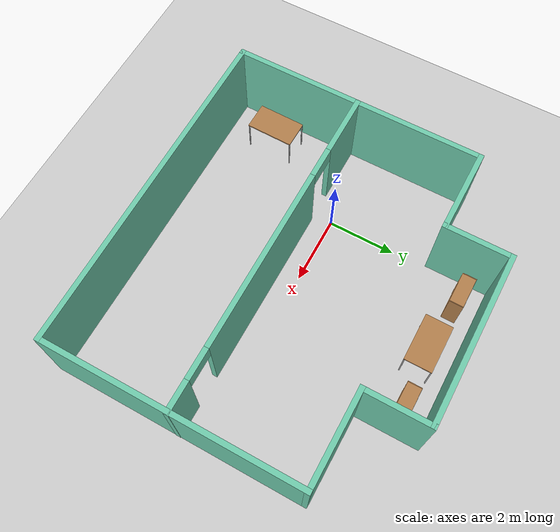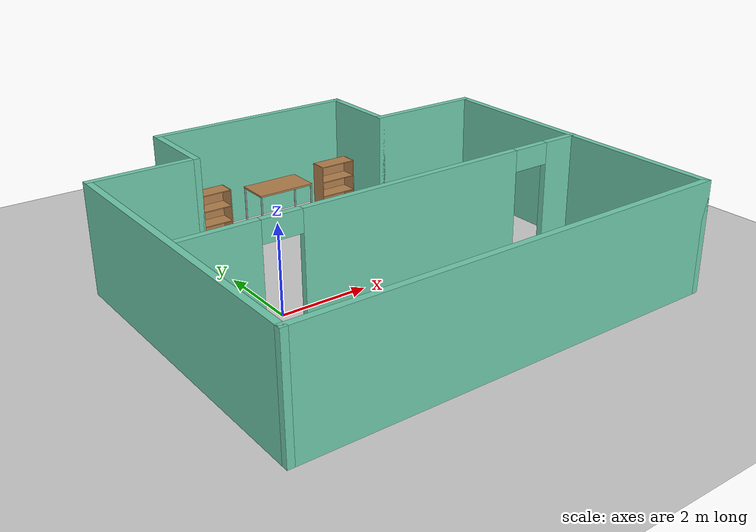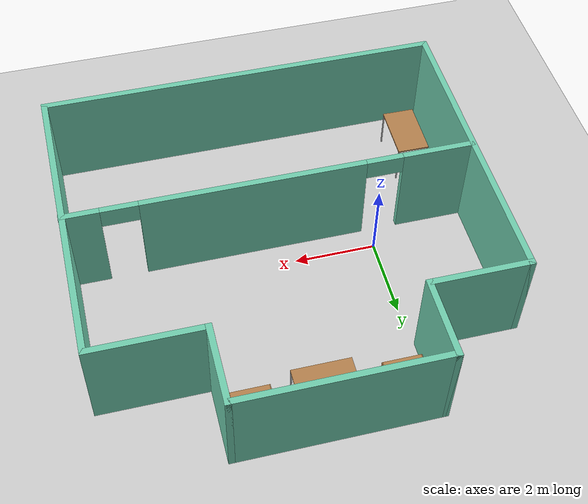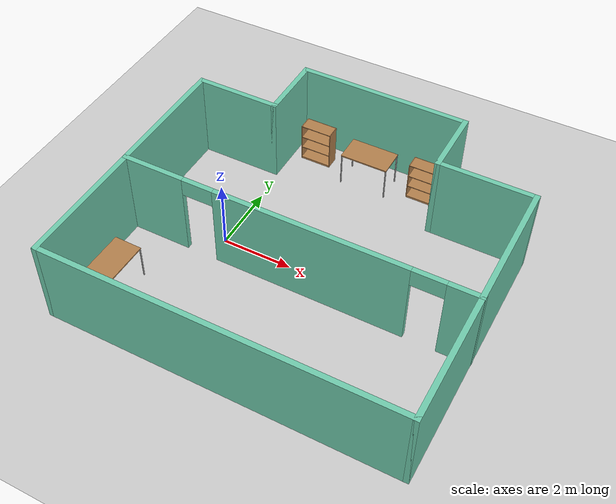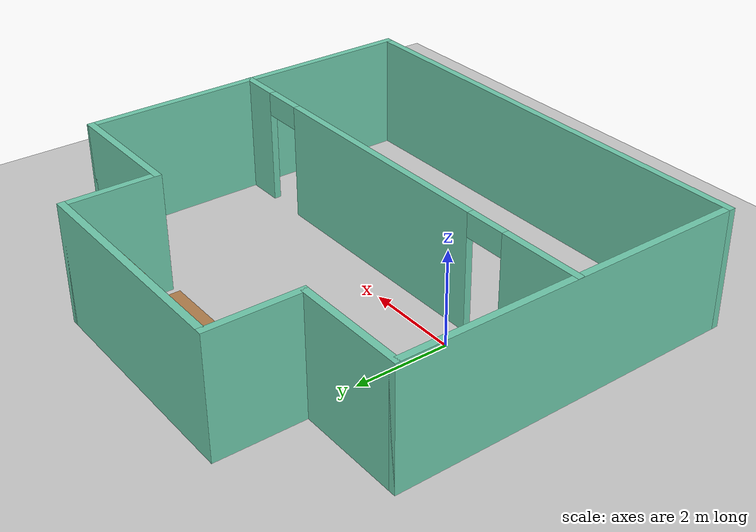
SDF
<sdf version="1.6">
 <world name="default">
  <light name="sun" type="directional">
   <pose>0 0 10 0 -0 0</pose>
   <diffuse>0.8 0.8 0.8 1</diffuse>
   <specular>0.1 0.1 0.1 1</specular>
   <attenuation>
    <range>1000</range>
    <constant>0.9</constant>
    <linear>0.01</linear>
    <quadratic>0.001</quadratic>
   </attenuation>
   <direction>-0.5 0.5 -1</direction>
  </light>
  <model name="ground_plane">
   <static>1</static>
   <link name="link">
    <collision name="collision">
     <geometry><plane><normal>0 0 1</normal><size>100 100</size></plane></geometry>
     <surface><friction><ode><mu>100</mu><mu2>50</mu2></ode></friction></surface>
    </collision>
    <visual name="visual">
     <cast_shadows>0</cast_shadows>
     <geometry><plane><normal>0 0 1</normal><size>100 100</size></plane></geometry>
     <material>
      <script><uri>file://media/materials/scripts/gazebo.material</uri><name>Gazebo/Grey</name></script>
     </material>
    </visual>
   </link>
  </model>
  <gravity>0 0 -9.8</gravity>
  <magnetic_field>6e-06 2.3e-05 -4.2e-05</magnetic_field>
  <atmosphere type="adiabatic"/>
  <physics name="default_physics" default="0" type="ode">
   <max_step_size>0.001</max_step_size>
   <real_time_factor>1</real_time_factor>
   <real_time_update_rate>1000</real_time_update_rate>
  </physics>
  <scene><ambient>0.4 0.4 0.4 1</ambient><background>0.7 0.7 0.7 1</background><shadows>1</shadows></scene>
  <spherical_coordinates>
   <surface_model>EARTH_WGS84</surface_model>
   <latitude_deg>0</latitude_deg>
   <longitude_deg>0</longitude_deg>
   <elevation>0</elevation>
   <heading_deg>0</heading_deg>
  </spherical_coordinates>
  <model name="dream_house">
   <pose>2.42956 0.31 0 0 -0 0</pose>
   <link name="Wall_0">
    <collision name="Wall_0_Collision">
     <geometry><box><size>7.5 0.15 2.5</size></box></geometry>
     <pose>0 0 1.25 0 -0 0</pose>
    </collision>
    <visual name="Wall_0_Visual">
     <pose>0 0 1.25 0 -0 0</pose>
     <geometry><box><size>7.5 0.15 2.5</size></box></geometry>
     <material>
      <script><uri>file://media/materials/scripts/gazebo.material</uri><name>Gazebo/Grey</name></script>
      <ambient>0.435294 0.796078 0.67451 1</ambient>
     </material>
    </visual>
    <pose>-4.92956 -0.925 0 0 -0 1.5708</pose>
   </link>
   <link name="Wall_11">
    <collision name="Wall_11_Collision">
     <geometry><box><size>2 0.15 2.5</size></box></geometry>
     <pose>0 0 1.25 0 -0 0</pose>
    </collision>
    <visual name="Wall_11_Visual">
     <pose>0 0 1.25 0 -0 0</pose>
     <geometry><box><size>2 0.15 2.5</size></box></geometry>
     <material>
      <script><uri>file://media/materials/scripts/gazebo.material</uri><name>Gazebo/Grey</name></script>
      <ambient>0.435294 0.796078 0.67451 1</ambient>
     </material>
    </visual>
    <pose>2.27044 3.675 0 0 0 -1.5708</pose>
   </link>
   <link name="Wall_12">
    <collision name="Wall_12_Collision">
     <geometry><box><size>2.8 0.15 2.5</size></box></geometry>
     <pose>0 0 1.25 0 -0 0</pose>
    </collision>
    <visual name="Wall_12_Visual">
     <pose>0 0 1.25 0 -0 0</pose>
     <geometry><box><size>2.8 0.15 2.5</size></box></geometry>
     <material>
      <script><uri>file://media/materials/scripts/gazebo.material</uri><name>Gazebo/Grey</name></script>
      <ambient>0.435294 0.796078 0.67451 1</ambient>
     </material>
    </visual>
    <pose>3.59544 2.75 0 0 -0 0</pose>
   </link>
   <link name="Wall_14">
    <pose>0.004562 -0.93503 0 0 -0 0</pose>
    <visual name="Wall_14_Visual_0">
     <pose>-4.0888 0 1.25 0 -0 0</pose>
     <geometry><box><size>1.82241 0.15 2.5</size></box></geometry>
     <material>
      <script><uri>file://media/materials/scripts/gazebo.material</uri><name>Gazebo/Grey</name></script>
      <ambient>0.435294 0.796078 0.67451 1</ambient>
     </material>
    </visual>
    <collision name="Wall_14_Collision_0">
     <geometry><box><size>1.82241 0.15 2.5</size></box></geometry>
     <pose>-4.0888 0 1.25 0 -0 0</pose>
    </collision>
    <visual name="Wall_14_Visual_1">
     <pose>0.441301 0 1.25 0 -0 0</pose>
     <geometry><box><size>5.43779 0.15 2.5</size></box></geometry>
     <material>
      <script><uri>file://media/materials/scripts/gazebo.material</uri><name>Gazebo/Grey</name></script>
      <ambient>0.435294 0.796078 0.67451 1</ambient>
     </material>
    </visual>
    <collision name="Wall_14_Collision_1">
     <geometry><box><size>5.43779 0.15 2.5</size></box></geometry>
     <pose>0.441301 0 1.25 0 -0 0</pose>
    </collision>
    <visual name="Wall_14_Visual_2">
     <pose>4.5301 0 1.25 0 -0 0</pose>
     <geometry><box><size>0.939806 0.15 2.5</size></box></geometry>
     <material>
      <script><uri>file://media/materials/scripts/gazebo.material</uri><name>Gazebo/Grey</name></script>
      <ambient>0.435294 0.796078 0.67451 1</ambient>
     </material>
    </visual>
    <collision name="Wall_14_Collision_2">
     <geometry><box><size>0.939806 0.15 2.5</size></box></geometry>
     <pose>4.5301 0 1.25 0 -0 0</pose>
    </collision>
    <visual name="Wall_14_Visual_3">
     <pose>-2.72759 0 2.25 0 -0 0</pose>
     <geometry><box><size>0.9 0.15 0.5</size></box></geometry>
     <material>
      <script><uri>file://media/materials/scripts/gazebo.material</uri><name>Gazebo/Grey</name></script>
      <ambient>0.435294 0.796078 0.67451 1</ambient>
     </material>
    </visual>
    <collision name="Wall_14_Collision_3">
     <geometry><box><size>0.9 0.15 0.5</size></box></geometry>
     <pose>-2.72759 0 2.25 0 -0 0</pose>
    </collision>
    <visual name="Wall_14_Visual_4">
     <pose>3.61019 0 2.25 0 -0 0</pose>
     <geometry><box><size>0.9 0.15 0.5</size></box></geometry>
     <material>
      <script><uri>file://media/materials/scripts/gazebo.material</uri><name>Gazebo/Grey</name></script>
      <ambient>0.435294 0.796078 0.67451 1</ambient>
     </material>
    </visual>
    <collision name="Wall_14_Collision_4">
     <geometry><box><size>0.9 0.15 0.5</size></box></geometry>
     <pose>3.61019 0 2.25 0 -0 0</pose>
    </collision>
   </link>
   <link name="Wall_2">
    <collision name="Wall_2_Collision">
     <geometry><box><size>10 0.15 2.5</size></box></geometry>
     <pose>0 0 1.25 0 -0 0</pose>
    </collision>
    <visual name="Wall_2_Visual">
     <pose>0 0 1.25 0 -0 0</pose>
     <geometry><box><size>10 0.15 2.5</size></box></geometry>
     <material>
      <script><uri>file://media/materials/scripts/gazebo.material</uri><name>Gazebo/Grey</name></script>
      <ambient>0.435294 0.796078 0.67451 1</ambient>
     </material>
    </visual>
    <pose>-0.004562 -4.6 0 0 -0 0</pose>
   </link>
   <link name="Wall_4">
    <collision name="Wall_4_Collision">
     <geometry><box><size>7.5 0.15 2.5</size></box></geometry>
     <pose>0 0 1.25 0 -0 0</pose>
    </collision>
    <visual name="Wall_4_Visual">
     <pose>0 0 1.25 0 -0 0</pose>
     <geometry><box><size>7.5 0.15 2.5</size></box></geometry>
     <material>
      <script><uri>file://media/materials/scripts/gazebo.material</uri><name>Gazebo/Grey</name></script>
      <ambient>0.435294 0.796078 0.67451 1</ambient>
     </material>
    </visual>
    <pose>4.92044 -0.925 0 0 -0 1.5708</pose>
   </link>
   <link name="Wall_6">
    <collision name="Wall_6_Collision">
     <geometry><box><size>2.5 0.15 2.5</size></box></geometry>
     <pose>0 0 1.25 0 -0 0</pose>
    </collision>
    <visual name="Wall_6_Visual">
     <pose>0 0 1.25 0 -0 0</pose>
     <geometry><box><size>2.5 0.15 2.5</size></box></geometry>
     <material>
      <script><uri>file://media/materials/scripts/gazebo.material</uri><name>Gazebo/Grey</name></script>
      <ambient>0.435294 0.796078 0.67451 1</ambient>
     </material>
    </visual>
    <pose>-3.75456 2.75 0 0 -0 0</pose>
   </link>
   <link name="Wall_8">
    <collision name="Wall_8_Collision">
     <geometry><box><size>2 0.15 2.5</size></box></geometry>
     <pose>0 0 1.25 0 -0 0</pose>
    </collision>
    <visual name="Wall_8_Visual">
     <pose>0 0 1.25 0 -0 0</pose>
     <geometry><box><size>2 0.15 2.5</size></box></geometry>
     <material>
      <script><uri>file://media/materials/scripts/gazebo.material</uri><name>Gazebo/Grey</name></script>
      <ambient>0.435294 0.796078 0.67451 1</ambient>
     </material>
    </visual>
    <pose>-2.57956 3.675 0 0 -0 1.5708</pose>
   </link>
   <link name="Wall_9">
    <collision name="Wall_9_Collision">
     <geometry><box><size>5 0.15 2.5</size></box></geometry>
     <pose>0 0 1.25 0 -0 0</pose>
    </collision>
    <visual name="Wall_9_Visual">
     <pose>0 0 1.25 0 -0 0</pose>
     <geometry><box><size>5 0.15 2.5</size></box></geometry>
     <material>
      <script><uri>file://media/materials/scripts/gazebo.material</uri><name>Gazebo/Grey</name></script>
      <ambient>0.435294 0.796078 0.67451 1</ambient>
     </material>
    </visual>
    <pose>-0.154562 4.6 0 0 -0 0</pose>
   </link>
   <static>1</static>
  </model>
  <model name="bookshelf">
   <static>1</static>
   <link name="link">
    <inertial><mass>1</mass></inertial>
    <collision name="back">
     <pose>0 0.005 0.6 0 -0 0</pose>
     <geometry><box><size>0.9 0.01 1.2</size></box></geometry>
    </collision>
    <visual name="visual1">
     <pose>0 0.005 0.6 0 -0 0</pose>
     <geometry><box><size>0.9 0.01 1.2</size></box></geometry>
     <material>
      <script><uri>file://media/materials/scripts/gazebo.material</uri><name>Gazebo/Wood</name></script>
     </material>
    </visual>
    <collision name="left_side">
     <pose>0.45 -0.195 0.6 0 -0 0</pose>
     <geometry><box><size>0.02 0.4 1.2</size></box></geometry>
    </collision>
    <visual name="visual2">
     <pose>0.45 -0.195 0.6 0 -0 0</pose>
     <geometry><box><size>0.02 0.4 1.2</size></box></geometry>
     <material>
      <script><uri>file://media/materials/scripts/gazebo.material</uri><name>Gazebo/Wood</name></script>
     </material>
    </visual>
    <collision name="right_side">
     <pose>-0.45 -0.195 0.6 0 -0 0</pose>
     <geometry><box><size>0.02 0.4 1.2</size></box></geometry>
    </collision>
    <visual name="visual3">
     <pose>-0.45 -0.195 0.6 0 -0 0</pose>
     <geometry><box><size>0.02 0.4 1.2</size></box></geometry>
     <material>
      <script><uri>file://media/materials/scripts/gazebo.material</uri><name>Gazebo/Wood</name></script>
     </material>
    </visual>
    <collision name="bottom">
     <pose>0 -0.195 0.03 0 -0 0</pose>
     <geometry><box><size>0.88 0.4 0.06</size></box></geometry>
    </collision>
    <visual name="visual4">
     <pose>0 -0.195 0.03 0 -0 0</pose>
     <geometry><box><size>0.88 0.4 0.06</size></box></geometry>
     <material>
      <script><uri>file://media/materials/scripts/gazebo.material</uri><name>Gazebo/Wood</name></script>
     </material>
    </visual>
    <collision name="top">
     <pose>0 -0.195 1.19 0 -0 0</pose>
     <geometry><box><size>0.88 0.4 0.02</size></box></geometry>
    </collision>
    <visual name="visual5">
     <pose>0 -0.195 1.19 0 -0 0</pose>
     <geometry><box><size>0.88 0.4 0.02</size></box></geometry>
     <material>
      <script><uri>file://media/materials/scripts/gazebo.material</uri><name>Gazebo/Wood</name></script>
     </material>
    </visual>
    <collision name="low_shelf">
     <pose>0 -0.195 0.43 0 -0 0</pose>
     <geometry><box><size>0.88 0.4 0.02</size></box></geometry>
    </collision>
    <visual name="visual6">
     <pose>0 -0.195 0.43 0 -0 0</pose>
     <geometry><box><size>0.88 0.4 0.02</size></box></geometry>
     <material>
      <script><uri>file://media/materials/scripts/gazebo.material</uri><name>Gazebo/Wood</name></script>
     </material>
    </visual>
    <collision name="high_shelf">
     <pose>0 -0.195 0.8 0 -0 0</pose>
     <geometry><box><size>0.88 0.4 0.02</size></box></geometry>
    </collision>
    <visual name="visual7">
     <pose>0 -0.195 0.8 0 -0 0</pose>
     <geometry><box><size>0.88 0.4 0.02</size></box></geometry>
     <material>
      <script><uri>file://media/materials/scripts/gazebo.material</uri><name>Gazebo/Wood</name></script>
     </material>
    </visual>
   </link>
   <pose>0.660151 4.39796 0 0 -0 0</pose>
  </model>
  <model name="bookshelf_0">
   <static>1</static>
   <link name="link">
    <inertial><mass>1</mass></inertial>
    <collision name="back">
     <pose>0 0.005 0.6 0 -0 0</pose>
     <geometry><box><size>0.9 0.01 1.2</size></box></geometry>
    </collision>
    <visual name="visual1">
     <pose>0 0.005 0.6 0 -0 0</pose>
     <geometry><box><size>0.9 0.01 1.2</size></box></geometry>
     <material>
      <script><uri>file://media/materials/scripts/gazebo.material</uri><name>Gazebo/Wood</name></script>
     </material>
    </visual>
    <collision name="left_side">
     <pose>0.45 -0.195 0.6 0 -0 0</pose>
     <geometry><box><size>0.02 0.4 1.2</size></box></geometry>
    </collision>
    <visual name="visual2">
     <pose>0.45 -0.195 0.6 0 -0 0</pose>
     <geometry><box><size>0.02 0.4 1.2</size></box></geometry>
     <material>
      <script><uri>file://media/materials/scripts/gazebo.material</uri><name>Gazebo/Wood</name></script>
     </material>
    </visual>
    <collision name="right_side">
     <pose>-0.45 -0.195 0.6 0 -0 0</pose>
     <geometry><box><size>0.02 0.4 1.2</size></box></geometry>
    </collision>
    <visual name="visual3">
     <pose>-0.45 -0.195 0.6 0 -0 0</pose>
     <geometry><box><size>0.02 0.4 1.2</size></box></geometry>
     <material>
      <script><uri>file://media/materials/scripts/gazebo.material</uri><name>Gazebo/Wood</name></script>
     </material>
    </visual>
    <collision name="bottom">
     <pose>0 -0.195 0.03 0 -0 0</pose>
     <geometry><box><size>0.88 0.4 0.06</size></box></geometry>
    </collision>
    <visual name="visual4">
     <pose>0 -0.195 0.03 0 -0 0</pose>
     <geometry><box><size>0.88 0.4 0.06</size></box></geometry>
     <material>
      <script><uri>file://media/materials/scripts/gazebo.material</uri><name>Gazebo/Wood</name></script>
     </material>
    </visual>
    <collision name="top">
     <pose>0 -0.195 1.19 0 -0 0</pose>
     <geometry><box><size>0.88 0.4 0.02</size></box></geometry>
    </collision>
    <visual name="visual5">
     <pose>0 -0.195 1.19 0 -0 0</pose>
     <geometry><box><size>0.88 0.4 0.02</size></box></geometry>
     <material>
      <script><uri>file://media/materials/scripts/gazebo.material</uri><name>Gazebo/Wood</name></script>
     </material>
    </visual>
    <collision name="low_shelf">
     <pose>0 -0.195 0.43 0 -0 0</pose>
     <geometry><box><size>0.88 0.4 0.02</size></box></geometry>
    </collision>
    <visual name="visual6">
     <pose>0 -0.195 0.43 0 -0 0</pose>
     <geometry><box><size>0.88 0.4 0.02</size></box></geometry>
     <material>
      <script><uri>file://media/materials/scripts/gazebo.material</uri><name>Gazebo/Wood</name></script>
     </material>
    </visual>
    <collision name="high_shelf">
     <pose>0 -0.195 0.8 0 -0 0</pose>
     <geometry><box><size>0.88 0.4 0.02</size></box></geometry>
    </collision>
    <visual name="visual7">
     <pose>0 -0.195 0.8 0 -0 0</pose>
     <geometry><box><size>0.88 0.4 0.02</size></box></geometry>
     <material>
      <script><uri>file://media/materials/scripts/gazebo.material</uri><name>Gazebo/Wood</name></script>
     </material>
    </visual>
   </link>
   <pose>4.06158 4.35459 0 0 -0 0</pose>
  </model>
  <model name="table">
   <static>0</static>
   <link name="link">
    <collision name="surface">
     <pose>0 0 1 0 -0 0</pose>
     <geometry><box><size>1.5 0.8 0.03</size></box></geometry>
     <surface><friction><ode><mu>0.6</mu><mu2>0.6</mu2></ode></friction></surface>
    </collision>
    <visual name="visual1">
     <pose>0 0 1 0 -0 0</pose>
     <geometry><box><size>1.4 0.8 0.04</size></box></geometry>
     <material>
      <script><uri>file://media/materials/scripts/gazebo.material</uri><name>Gazebo/Wood</name></script>
     </material>
    </visual>
    <collision name="front_left_leg">
     <pose>0.68 0.38 0.5 0 -0 0</pose>
     <geometry><cylinder><radius>0.02</radius><length>1</length></cylinder></geometry>
    </collision>
    <visual name="front_left_leg">
     <pose>0.68 0.38 0.5 0 -0 0</pose>
     <geometry><cylinder><radius>0.02</radius><length>1</length></cylinder></geometry>
     <material>
      <script><uri>file://media/materials/scripts/gazebo.material</uri><name>Gazebo/Grey</name></script>
     </material>
    </visual>
    <collision name="front_right_leg">
     <pose>0.68 -0.38 0.5 0 -0 0</pose>
     <geometry><cylinder><radius>0.02</radius><length>1</length></cylinder></geometry>
    </collision>
    <visual name="front_right_leg">
     <pose>0.68 -0.38 0.5 0 -0 0</pose>
     <geometry><cylinder><radius>0.02</radius><length>1</length></cylinder></geometry>
     <material>
      <script><uri>file://media/materials/scripts/gazebo.material</uri><name>Gazebo/Grey</name></script>
     </material>
    </visual>
    <collision name="back_right_leg">
     <pose>-0.68 -0.38 0.5 0 -0 0</pose>
     <geometry><cylinder><radius>0.02</radius><length>1</length></cylinder></geometry>
    </collision>
    <visual name="back_right_leg">
     <pose>-0.68 -0.38 0.5 0 -0 0</pose>
     <geometry><cylinder><radius>0.02</radius><length>1</length></cylinder></geometry>
     <material>
      <script><uri>file://media/materials/scripts/gazebo.material</uri><name>Gazebo/Grey</name></script>
     </material>
    </visual>
    <collision name="back_left_leg">
     <pose>-0.68 0.38 0.5 0 -0 0</pose>
     <geometry><cylinder><radius>0.02</radius><length>1</length></cylinder></geometry>
    </collision>
    <visual name="back_left_leg">
     <pose>-0.68 0.38 0.5 0 -0 0</pose>
     <geometry><cylinder><radius>0.02</radius><length>1</length></cylinder></geometry>
     <material>
      <script><uri>file://media/materials/scripts/gazebo.material</uri><name>Gazebo/Grey</name></script>
     </material>
    </visual>
    <inertial>
     <inertia><ixx>1</ixx><ixy>0</ixy><ixz>0</ixz><iyy>1</iyy><iyz>0</iyz><izz>1</izz></inertia>
     <mass>1</mass>
    </inertial>
   </link>
   <pose>2.37418 4.0134 -9e-06 1e-06 -1e-06 0</pose>
  </model>
  <model name="table_0">
   <static>0</static>
   <link name="link">
    <collision name="surface">
     <pose>0 0 1 0 -0 0</pose>
     <geometry><box><size>1.5 0.8 0.03</size></box></geometry>
     <surface><friction><ode><mu>0.6</mu><mu2>0.6</mu2></ode></friction></surface>
    </collision>
    <visual name="visual1">
     <pose>0 0 1 0 -0 0</pose>
     <geometry><box><size>1.4 0.8 0.04</size></box></geometry>
     <material>
      <script><uri>file://media/materials/scripts/gazebo.material</uri><name>Gazebo/Wood</name></script>
     </material>
    </visual>
    <collision name="front_left_leg">
     <pose>0.68 0.38 0.5 0 -0 0</pose>
     <geometry><cylinder><radius>0.02</radius><length>1</length></cylinder></geometry>
    </collision>
    <visual name="front_left_leg">
     <pose>0.68 0.38 0.5 0 -0 0</pose>
     <geometry><cylinder><radius>0.02</radius><length>1</length></cylinder></geometry>
     <material>
      <script><uri>file://media/materials/scripts/gazebo.material</uri><name>Gazebo/Grey</name></script>
     </material>
    </visual>
    <collision name="front_right_leg">
     <pose>0.68 -0.38 0.5 0 -0 0</pose>
     <geometry><cylinder><radius>0.02</radius><length>1</length></cylinder></geometry>
    </collision>
    <visual name="front_right_leg">
     <pose>0.68 -0.38 0.5 0 -0 0</pose>
     <geometry><cylinder><radius>0.02</radius><length>1</length></cylinder></geometry>
     <material>
      <script><uri>file://media/materials/scripts/gazebo.material</uri><name>Gazebo/Grey</name></script>
     </material>
    </visual>
    <collision name="back_right_leg">
     <pose>-0.68 -0.38 0.5 0 -0 0</pose>
     <geometry><cylinder><radius>0.02</radius><length>1</length></cylinder></geometry>
    </collision>
    <visual name="back_right_leg">
     <pose>-0.68 -0.38 0.5 0 -0 0</pose>
     <geometry><cylinder><radius>0.02</radius><length>1</length></cylinder></geometry>
     <material>
      <script><uri>file://media/materials/scripts/gazebo.material</uri><name>Gazebo/Grey</name></script>
     </material>
    </visual>
    <collision name="back_left_leg">
     <pose>-0.68 0.38 0.5 0 -0 0</pose>
     <geometry><cylinder><radius>0.02</radius><length>1</length></cylinder></geometry>
    </collision>
    <visual name="back_left_leg">
     <pose>-0.68 0.38 0.5 0 -0 0</pose>
     <geometry><cylinder><radius>0.02</radius><length>1</length></cylinder></geometry>
     <material>
      <script><uri>file://media/materials/scripts/gazebo.material</uri><name>Gazebo/Grey</name></script>
     </material>
    </visual>
    <inertial>
     <inertia><ixx>1</ixx><ixy>0</ixy><ixz>0</ixz><iyy>1</iyy><iyz>0</iyz><izz>1</izz></inertia>
     <mass>1</mass>
    </inertial>
   </link>
   <pose>-1.63949 -2.75048 -1e-06 0 -1e-06 1.55701</pose>
  </model>
 </world>
</sdf>
